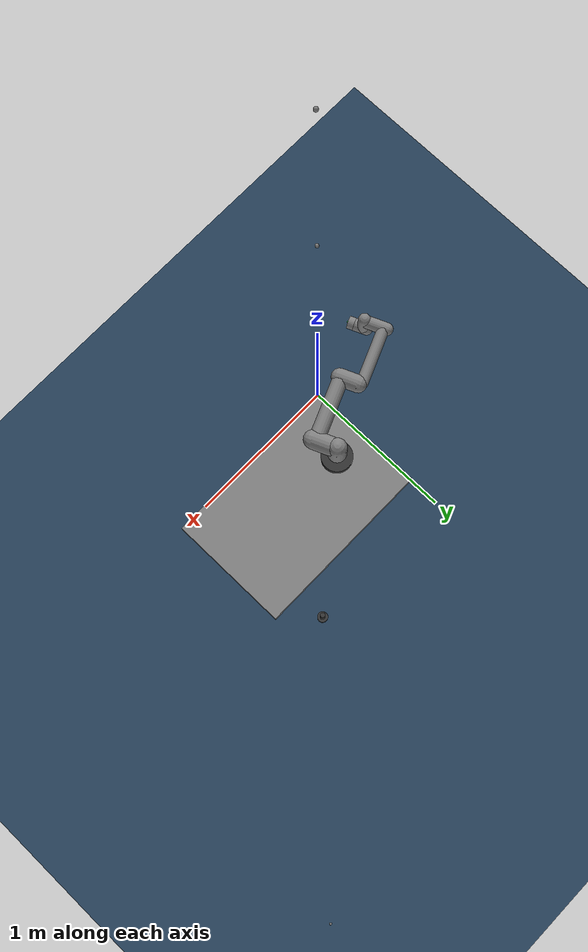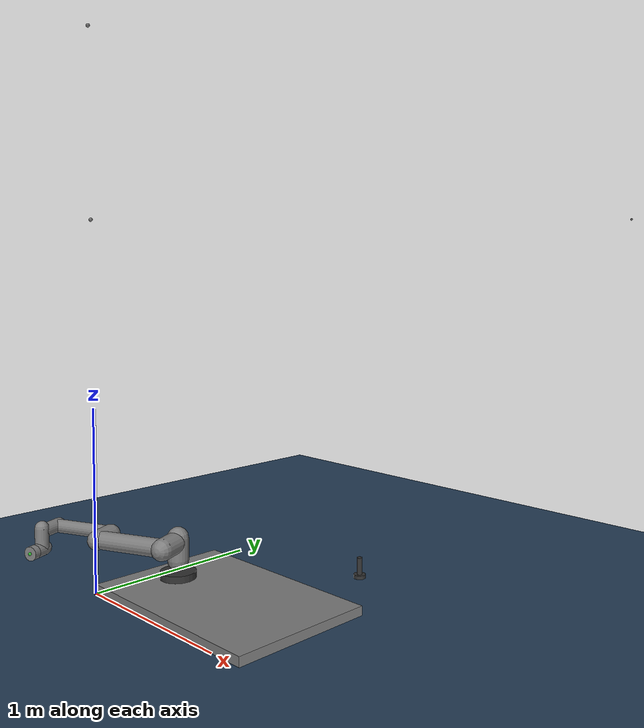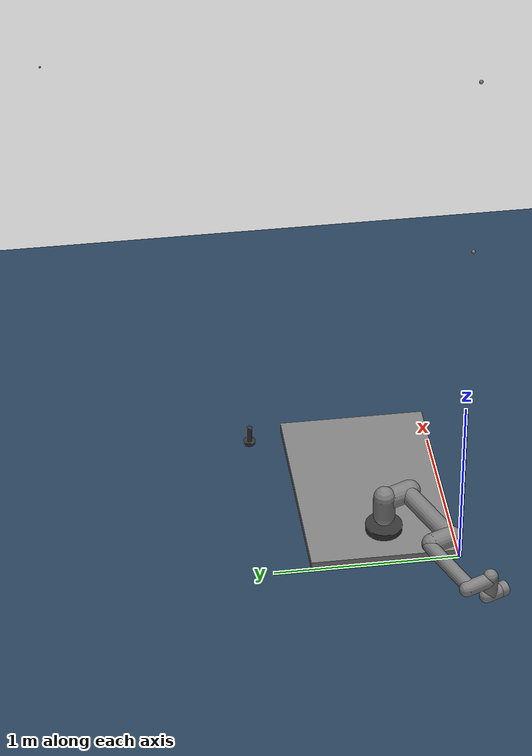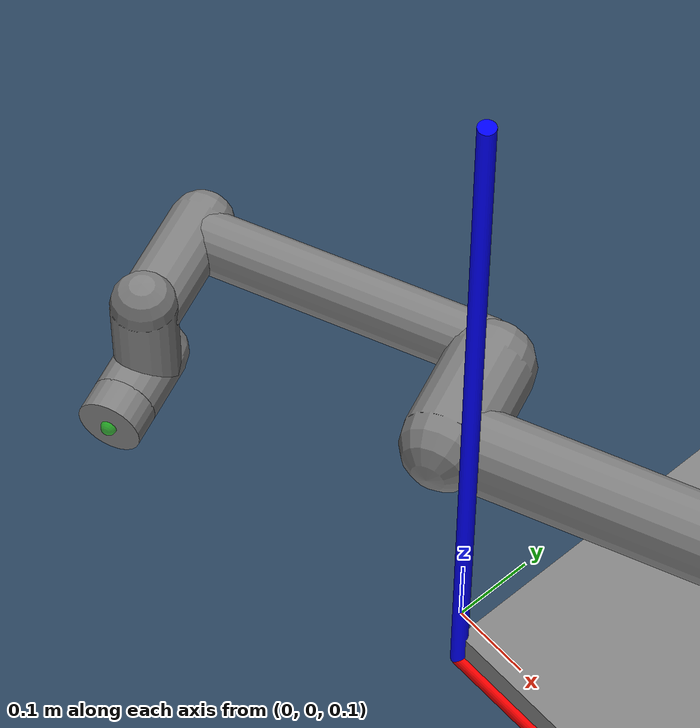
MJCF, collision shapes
<mujoco model="test scene">

	<compiler angle="radian" autolimits="true" />
	<option timestep="0.002" integrator="implicitfast" solver="PGS" gravity="0 0 -9.82"
		cone="elliptic" />

	<default>
		<default class="ur5e">
			<material specular="0.5" shininess="0.25" />
			<joint axis="0 1 0" range="-6.28319 6.28319" armature="0.1" />
			<general gaintype="fixed" biastype="affine" ctrlrange="-6.2831 6.2831" gainprm="2000"
				biasprm="0 -2000 -400" forcerange="-150 150" />
			<default class="size3">
				<default class="size3_limited">
					<joint range="-3.1415 3.1415" />
					<general ctrlrange="-3.1415 3.1415" />
				</default>
			</default>
			<default class="size1">
				<general gainprm="500" biasprm="0 -500 -100" forcerange="-28 28" />
			</default>
			<default class="visual">
				<geom type="mesh" contype="0" conaffinity="0" group="2" />
			</default>
			<default class="collision">
				<geom type="capsule" group="3" />
				<default class="eef_collision">
					<geom type="cylinder" />
				</default>
			</default>
			<site size="0.001" rgba="0.5 0.5 0.5 0.3" group="4" />
		</default>
	</default>

	<asset>
		<material name="black" rgba="0.033 0.033 0.033 1" />
		<material name="jointgray" rgba="0.278 0.278 0.278 1" />
		<material name="linkgray" rgba="0.82 0.82 0.82 1" />
		<material name="urblue" rgba="0.49 0.678 0.8 1" />

		<mesh file="../assets/universal_robots_ur5e/assets/base_0.obj" />
		<mesh file="../assets/universal_robots_ur5e/assets/base_1.obj" />
		<mesh file="../assets/universal_robots_ur5e/assets/shoulder_0.obj" />
		<mesh file="../assets/universal_robots_ur5e/assets/shoulder_1.obj" />
		<mesh file="../assets/universal_robots_ur5e/assets/shoulder_2.obj" />
		<mesh file="../assets/universal_robots_ur5e/assets/upperarm_0.obj" />
		<mesh file="../assets/universal_robots_ur5e/assets/upperarm_1.obj" />
		<mesh file="../assets/universal_robots_ur5e/assets/upperarm_2.obj" />
		<mesh file="../assets/universal_robots_ur5e/assets/upperarm_3.obj" />
		<mesh file="../assets/universal_robots_ur5e/assets/forearm_0.obj" />
		<mesh file="../assets/universal_robots_ur5e/assets/forearm_1.obj" />
		<mesh file="../assets/universal_robots_ur5e/assets/forearm_2.obj" />
		<mesh file="../assets/universal_robots_ur5e/assets/forearm_3.obj" />
		<mesh file="../assets/universal_robots_ur5e/assets/wrist1_0.obj" />
		<mesh file="../assets/universal_robots_ur5e/assets/wrist1_1.obj" />
		<mesh file="../assets/universal_robots_ur5e/assets/wrist1_2.obj" />
		<mesh file="../assets/universal_robots_ur5e/assets/wrist2_0.obj" />
		<mesh file="../assets/universal_robots_ur5e/assets/wrist2_1.obj" />
		<mesh file="../assets/universal_robots_ur5e/assets/wrist2_2.obj" />
		<mesh file="../assets/universal_robots_ur5e/assets/wrist3.obj" />
	</asset>

	<worldbody>
		<body name="ur5e_base" childclass="ur5e" pos="0.22331901 0.37537452 0.08791326"
			quat="-0.19858483999999996 -0.00311175 0.0012299899999999998 0.98007799">

			<inertial mass="4" pos="0 0 0" diaginertia="0.00443333156 0.00443333156 0.0072" />
			<geom mesh="base_0" material="black" class="visual" />
			<geom mesh="base_1" material="jointgray" class="visual" />
			<body name="shoulder_link" pos="0 0 0.163">
				<inertial mass="3.7" pos="0 0 0" diaginertia="0.0102675 0.0102675 0.00666" />
				<joint name="shoulder_pan" axis="0 0 1" />
				<geom mesh="shoulder_0" material="urblue" class="visual" />
				<geom mesh="shoulder_1" material="black" class="visual" />
				<geom mesh="shoulder_2" material="jointgray" class="visual" />
				<geom class="collision" size="0.06 0.06" pos="0 0 -0.04" />
				<body name="upper_arm_link" pos="0 0.138 0" quat="1 0 1 0">
					<inertial mass="8.393" pos="0 0 0.2125"
						diaginertia="0.133886 0.133886 0.0151074" />
					<joint name="shoulder_lift" />
					<geom mesh="upperarm_0" material="linkgray" class="visual" />
					<geom mesh="upperarm_1" material="black" class="visual" />
					<geom mesh="upperarm_2" material="jointgray" class="visual" />
					<geom mesh="upperarm_3" material="urblue" class="visual" />
					<geom class="collision" pos="0 -0.04 0" quat="1 1 0 0" size="0.06 0.06" />
					<geom class="collision" size="0.05 0.2" pos="0 0 0.2" />
					<body name="forearm_link" pos="0 -0.131 0.425">
						<inertial mass="2.275" pos="0 0 0.196"
							diaginertia="0.0311796 0.0311796 0.004095" />
						<joint name="elbow" class="size3_limited" />
						<geom mesh="forearm_0" material="urblue" class="visual" />
						<geom mesh="forearm_1" material="linkgray" class="visual" />
						<geom mesh="forearm_2" material="black" class="visual" />
						<geom mesh="forearm_3" material="jointgray" class="visual" />
						<geom class="collision" pos="0 0.08 0" quat="1 1 0 0" size="0.055 0.06" />
						<geom class="collision" size="0.038 0.19" pos="0 0 0.2" />
						<body name="wrist_1_link" pos="0 0 0.392" quat="1 0 1 0">
							<inertial mass="1.219" pos="0 0.127 0"
								diaginertia="0.0025599 0.0025599 0.0021942" />
							<joint name="wrist_1" />
							<geom mesh="wrist1_0" material="black" class="visual" />
							<geom mesh="wrist1_1" material="urblue" class="visual" />
							<geom mesh="wrist1_2" material="jointgray" class="visual" />
							<geom class="collision" pos="0 0.05 0" quat="1 1 0 0" size="0.04 0.07" />
							<body name="wrist_2_link" pos="0 0.127 0">
								<inertial mass="1.219" pos="0 0 0.1"
									diaginertia="0.0025599 0.0025599 0.0021942" />
								<joint name="wrist_2" axis="0 0 1" />
								<geom mesh="wrist2_0" material="black" class="visual" />
								<geom mesh="wrist2_1" material="urblue" class="visual" />
								<geom mesh="wrist2_2" material="jointgray" class="visual" />
								<geom name="1" class="collision" size="0.04 0.06" pos="0 0 0.04" />
								<geom name="2" class="collision" pos="0 0.02 0.1" quat="1 1 0 0"
									size="0.04 0.04" />
								<body name="wrist_3_link" pos="0 0 0.1">
									<inertial mass="0.1879" pos="0 0.0771683 0" quat="1 0 0 1"
										diaginertia="0.000132134 9.90863e-05 9.90863e-05" />
									<joint name="wrist_3" />
									<geom name="wrist3" material="linkgray" mesh="wrist3"
										class="visual" />
									<geom name="eef_collision" class="eef_collision" pos="0 0.08 0"
										quat="1 1 0 0"
										size="0.04 0.02" />

										<site name="sensor_site" pos="0 0 0" size="0.01" rgba="0 0 1 0.5" group="2" />

										<body name="flange" pos="0 0.1 0" quat="1 -1 0 0">
										<site name="tcp" pos="0 0 0" size="0.01" rgba="0 1 0 0.5" group="2" />
									</body>

								</body>
							</body>
						</body>
					</body>
				</body>
			</body>
		</body>
	</worldbody>

	<actuator>
		<general class="size3" name="shoulder_pan" joint="shoulder_pan_joint"/>
		<general class="size3" name="shoulder_lift" joint="shoulder_lift_joint"/>
		<general class="size3_limited" name="elbow" joint="elbow_joint"/>
		<general class="size1" name="wrist_1" joint="wrist_1_joint"/>
		<general class="size1" name="wrist_2" joint="wrist_2_joint"/>
		<general class="size1" name="wrist_3" joint="wrist_3_joint"/>
	</actuator>

	<sensor>
		<force name="force" site="tcp" />
		<torque name="torque" site="tcp" />
	</sensor>

	<worldbody>
		<body name="ur_mounting_plate" pos="0.22331901 0.37537452 0.06895663">
			<geom name="ur_mounting_plate" type="cylinder" size="0.1 0.01895663"
				rgba="0.2 0.2 0.2 1" mass="10" />
		</body>
	</worldbody>

	<worldbody>
		<body name="flexcell_top">
			<geom name="flexcell_top" type="box" size="0.6 0.4 0.025" pos="0.6 0.4 0.025"
				margin="0.001"
				solref="0.0001 1" solimp="0.9 0.95 0.001 0.5 4" />
		</body>
	</worldbody>

	<worldbody>
		<body name="flange_tool" pos="1 1 0.1">
			<joint name="flange_tool" type="free" />
			<site name="flange_tool" pos="0 0 -0.01" />
			<geom name="flange_tool_base" mass="0.5" type="cylinder" size="0.032 0.01"
				rgba="0.2 0.2 0.2 1" />
			<geom name="flange_tool_tip" mass="0.5" type="cylinder" size="0.015 0.05"
				rgba="0.2 0.2 0.2 1" pos="0 0 0.05" />
		</body>
	</worldbody>

	<statistic center="0.3 0 0.3" extent="0.8" meansize="0.08" />

	<visual>
		<headlight diffuse="0.6 0.6 0.6" ambient="0.1 0.1 0.1" specular="0 0 0" />
		<rgba haze="0.15 0.25 0.35 1" />
		<global azimuth="120" elevation="-20" />
	</visual>

	<asset>
		<texture type="skybox" builtin="gradient" rgb1="0.3 0.5 0.7" rgb2="0 0 0" width="512"
			height="3072" />
		<texture type="2d" name="groundplane" builtin="checker" mark="edge" rgb1="0.2 0.3 0.4"
			rgb2="0.1 0.2 0.3" markrgb="0.8 0.8 0.8" width="300" height="300" />
		<material name="groundplane" texture="groundplane" texuniform="true" texrepeat="5 5"
			reflectance="0.2" />
	</asset>

	<worldbody>
		<light pos="0 0 1.5" dir="0 0 -1" directional="true" />
		<geom name="floor" size="0 0 0.05" type="plane" material="groundplane" />
		<geom name="x-axis" group="2" type="cylinder" contype="0" conaffinity="0"
			fromto="0 0 0 1 0 0" size="0.01" rgba="1 0 0 1" />
		<geom name="y-axis" group="2" type="cylinder" contype="0" conaffinity="0"
			fromto="0 0 0 0 1 0" size="0.01" rgba="0 1 0 1" />
		<geom name="z-axis" group="2" type="cylinder" contype="0" conaffinity="0"
			fromto="0 0 0 0 0 1" size="0.01" rgba="0 0 1 1" />

		<camera
			name="cam"
			pos="1 1 1"
			mode="targetbody"
			target="wrist_3_link"
		/>

		<body name="mocap" mocap="true" pos="2 2 2">
			<geom name="mocap" type="sphere" size="0.001" />
			<site name="test" />
		</body>

		<body name="o1" pos="0 0 2">
			<geom name="o1" type="sphere" size="0.01" />
		</body>
		<body name="o2" pos="0 0 3">
			<geom name="o2" type="sphere" size="0.01" />
		</body>

	</worldbody>

	<contact>
		<exclude body1="flange" body2="flange_tool" />
		<exclude body1="wrist_3_link" body2="flange_tool" />
		<exclude body1="wrist_2_link" body2="flange_tool" />
	</contact>

	<equality>
		<weld name="attach" site1="tcp" site2="flange_tool" active="false" solref="0.00001 2" />
	</equality>

	<include file="../tests/test_states.xml" />

</mujoco>

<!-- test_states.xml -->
<mujocoinclude>
    <keyframe>
        <key name="test_state" time="0.0" qpos="0.  0.  0.  0.  0.  0.  1.  1.  0.1 1.  0.  0.  0. " qvel="0. 0. 0. 0. 0. 0. 0. 0. 0. 0. 0. 0." ctrl="0. 0. 0. 0. 0. 0." mpos="2. 2. 2." mquat="1. 0. 0. 0." />
    </keyframe>
</mujocoinclude>
